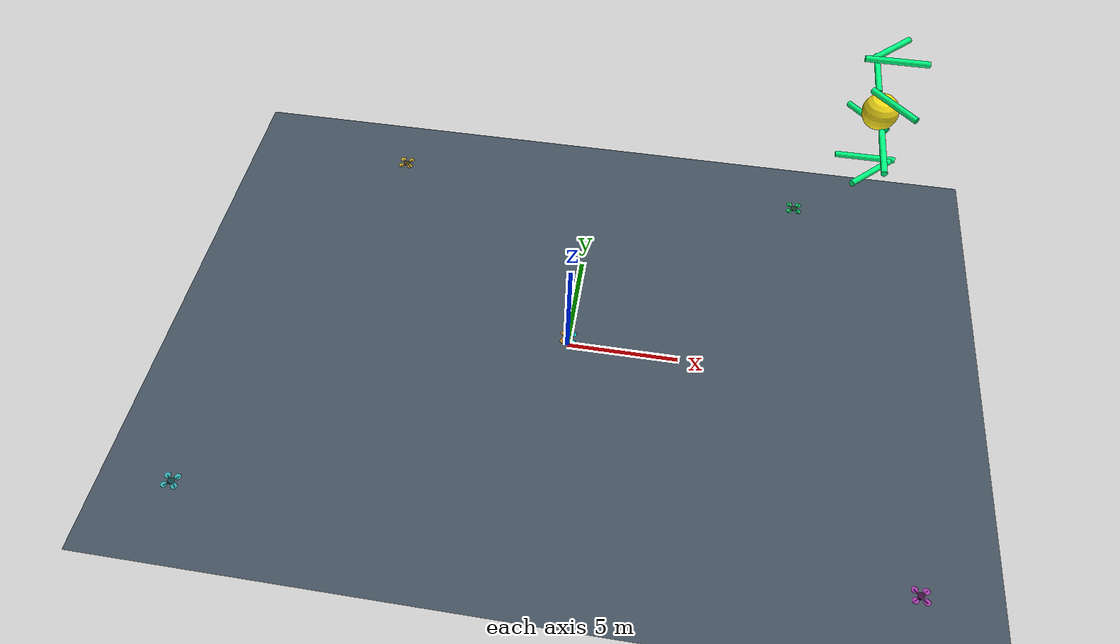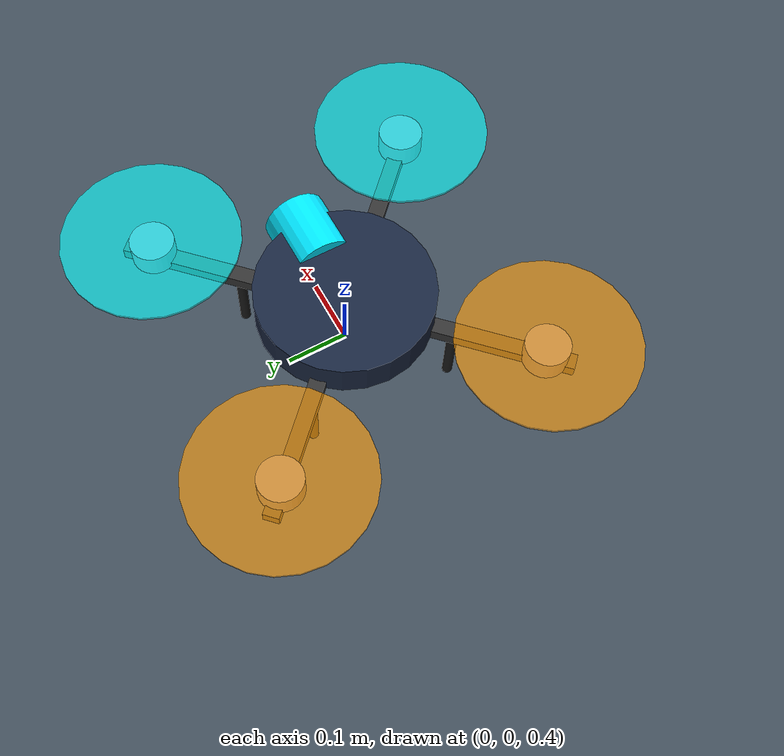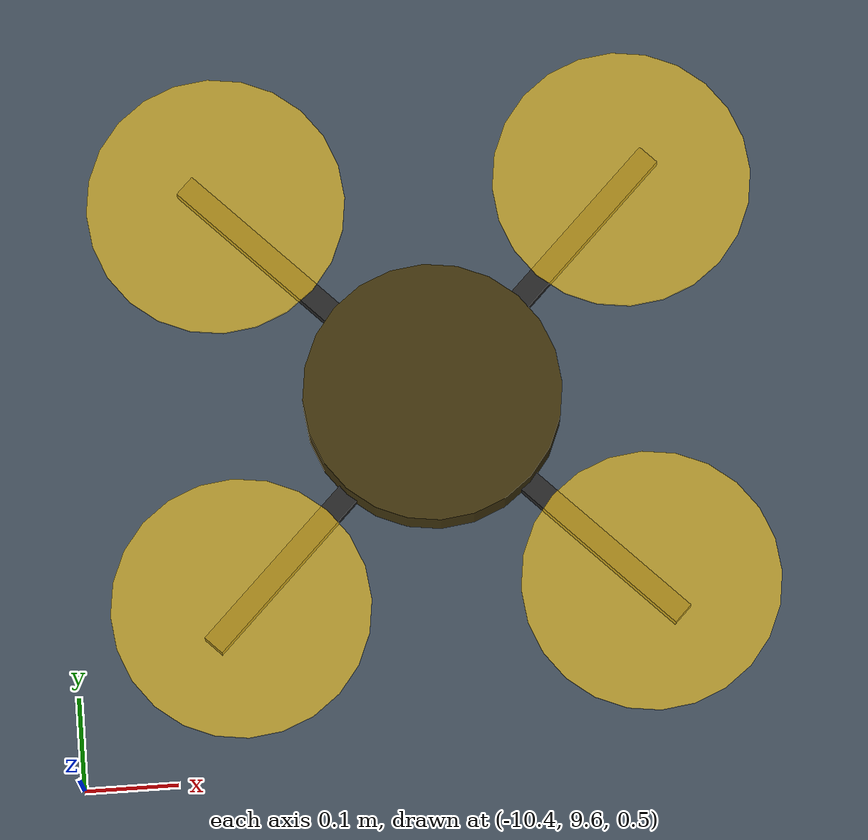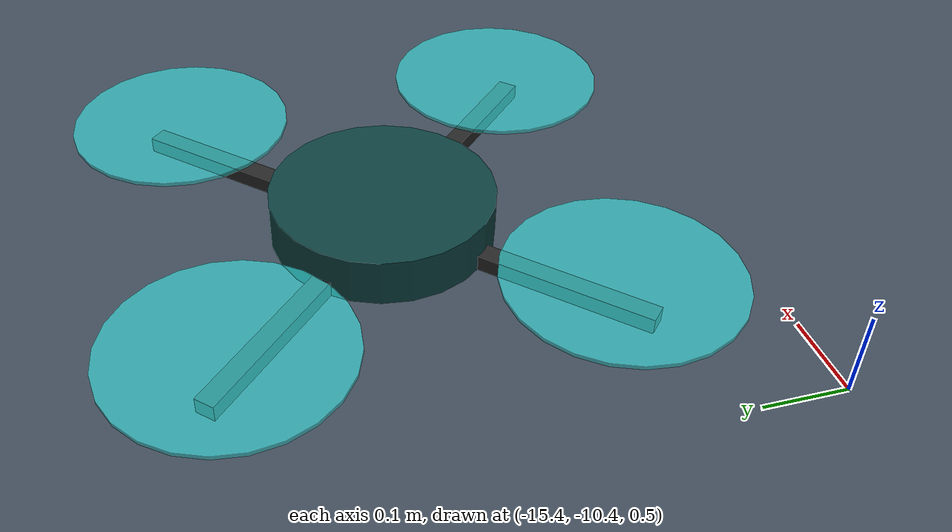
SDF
<?xml version="1.0" ?>
<sdf version="1.8">
  <world name="empty_flight">

    <!-- 500Hz Physics Solver for PX4 aerodynamics -->
    <physics name="ode_physics" type="ode">
      <max_step_size>0.002</max_step_size>
      <real_time_factor>1.0</real_time_factor>
      <real_time_update_rate>500</real_time_update_rate>
    </physics>

    <!-- Gazebo Sim 8 Core System Plugins -->
    <plugin filename="gz-sim-physics-system"        name="gz::sim::systems::Physics"/>
    <plugin filename="gz-sim-user-commands-system"  name="gz::sim::systems::UserCommands"/>
    <plugin filename="gz-sim-scene-broadcaster-system" name="gz::sim::systems::SceneBroadcaster"/>
    <plugin filename="gz-sim-sensors-system"        name="gz::sim::systems::Sensors"/>

    <!-- WGS84 Reference Coordinates -->
    <spherical_coordinates>
      <surface_model>EARTH_WGS84</surface_model>
      <latitude_deg>37.774929</latitude_deg>
      <longitude_deg>-122.419416</longitude_deg>
      <elevation>0.0</elevation>
    </spherical_coordinates>

    <!-- Directional Sun Lighting -->
    <light type="directional" name="sun">
      <cast_shadows>true</cast_shadows>
      <pose>100 100 150 0 0 0</pose>
      <diffuse>1.0 1.0 0.95 1</diffuse>
      <specular>0.3 0.3 0.3 1</specular>
    </light>

    <!-- Ground Plane -->
    <model name="ground_plane">
      <static>true</static>
      <link name="link">
        <collision name="collision">
          <geometry>
            <plane>
              <normal>0 0 1</normal>
              <size>500 500</size>
            </plane>
          </geometry>
        </collision>
        <visual name="visual">
          <geometry>
            <plane>
              <normal>0 0 1</normal>
              <size>500 500</size>
            </plane>
          </geometry>
          <material>
            <ambient>0.15 0.2 0.25 1</ambient>
            <diffuse>0.25 0.3 0.35 1</diffuse>
          </material>
        </visual>
      </link>
    </model>

    <!--            5 TACTICAL QUADROTOR SWARM DIGITAL TWINS               -->

    <!-- Drone 1: UAV Alpha (Swarm Leader) - Cyan / Gold LED -->
    <model name="uav_alpha">
      <pose>0 0 0.5 0 0 0</pose>
      <static>false</static>
      <link name="base_link">
        <gravity>false</gravity>
        <kinematic>true</kinematic>
        <inertial><mass>1.5</mass><inertia><ixx>0.025</ixx><ixy>0</ixy><ixz>0</ixz><iyy>0.025</iyy><iyz>0</iyz><izz>0.045</izz></inertia></inertial>
        <collision name="chassis_collision"><geometry><cylinder><radius>0.22</radius><length>0.10</length></cylinder></geometry></collision>

        <!-- Streamlined Fuselage Canopy -->
        <visual name="canopy_body">
          <pose>0 0 0.02 0 0 0</pose>
          <geometry><cylinder><radius>0.14</radius><length>0.06</length></cylinder></geometry>
          <material><ambient>0.05 0.05 0.08 1</ambient><diffuse>0.1 0.15 0.25 1</diffuse></material>
        </visual>
        <visual name="nose_cone">
          <pose>0.12 0 0.02 0 1.5708 0</pose>
          <geometry><cylinder><radius>0.05</radius><length>0.10</length></cylinder></geometry>
          <material><ambient>0.0 0.8 1.0 1</ambient><diffuse>0.0 0.9 1.0 1</diffuse></material>
        </visual>

        <!-- 4 Diagonal Carbon Fiber Quad Arms -->
        <visual name="arm_fl"><pose>0.14 0.14 0 0 0 0.785</pose><geometry><box><size>0.32 0.025 0.02</size></box></geometry><material><ambient>0.15 0.15 0.15 1</ambient><diffuse>0.2 0.2 0.2 1</diffuse></material></visual>
        <visual name="arm_fr"><pose>0.14 -0.14 0 0 0 -0.785</pose><geometry><box><size>0.32 0.025 0.02</size></box></geometry><material><ambient>0.15 0.15 0.15 1</ambient><diffuse>0.2 0.2 0.2 1</diffuse></material></visual>
        <visual name="arm_rl"><pose>-0.14 0.14 0 0 0 -0.785</pose><geometry><box><size>0.32 0.025 0.02</size></box></geometry><material><ambient>0.15 0.15 0.15 1</ambient><diffuse>0.2 0.2 0.2 1</diffuse></material></visual>
        <visual name="arm_rr"><pose>-0.14 -0.14 0 0 0 0.785</pose><geometry><box><size>0.32 0.025 0.02</size></box></geometry><material><ambient>0.15 0.15 0.15 1</ambient><diffuse>0.2 0.2 0.2 1</diffuse></material></visual>

        <!-- 4 Brushless Motor Pods -->
        <visual name="motor_fl"><pose>0.22 0.22 0.02 0 0 0</pose><geometry><cylinder><radius>0.035</radius><length>0.04</length></cylinder></geometry><material><ambient>0.3 0.3 0.35 1</ambient><diffuse>0.5 0.5 0.6 1</diffuse></material></visual>
        <visual name="motor_fr"><pose>0.22 -0.22 0.02 0 0 0</pose><geometry><cylinder><radius>0.035</radius><length>0.04</length></cylinder></geometry><material><ambient>0.3 0.3 0.35 1</ambient><diffuse>0.5 0.5 0.6 1</diffuse></material></visual>
        <visual name="motor_rl"><pose>-0.22 0.22 0.02 0 0 0</pose><geometry><cylinder><radius>0.035</radius><length>0.04</length></cylinder></geometry><material><ambient>0.3 0.3 0.35 1</ambient><diffuse>0.5 0.5 0.6 1</diffuse></material></visual>
        <visual name="motor_rr"><pose>-0.22 -0.22 0.02 0 0 0</pose><geometry><cylinder><radius>0.035</radius><length>0.04</length></cylinder></geometry><material><ambient>0.3 0.3 0.35 1</ambient><diffuse>0.5 0.5 0.6 1</diffuse></material></visual>

        <!-- 4 Spinning Rotor Discs -->
        <visual name="rotor_fl"><pose>0.22 0.22 0.045 0 0 0</pose><geometry><cylinder><radius>0.14</radius><length>0.005</length></cylinder></geometry><material><ambient>0.0 0.9 1.0 0.6</ambient><diffuse>0.0 1.0 1.0 0.6</diffuse></material></visual>
        <visual name="rotor_fr"><pose>0.22 -0.22 0.045 0 0 0</pose><geometry><cylinder><radius>0.14</radius><length>0.005</length></cylinder></geometry><material><ambient>0.0 0.9 1.0 0.6</ambient><diffuse>0.0 1.0 1.0 0.6</diffuse></material></visual>
        <visual name="rotor_rl"><pose>-0.22 0.22 0.045 0 0 0</pose><geometry><cylinder><radius>0.14</radius><length>0.005</length></cylinder></geometry><material><ambient>1.0 0.6 0.0 0.6</ambient><diffuse>1.0 0.6 0.0 0.6</diffuse></material></visual>
        <visual name="rotor_rr"><pose>-0.22 -0.22 0.045 0 0 0</pose><geometry><cylinder><radius>0.14</radius><length>0.005</length></cylinder></geometry><material><ambient>1.0 0.6 0.0 0.6</ambient><diffuse>1.0 0.6 0.0 0.6</diffuse></material></visual>

        <!-- Landing Legs -->
        <visual name="leg_fl"><pose>0.12 0.12 -0.06 0 0 0</pose><geometry><cylinder><radius>0.008</radius><length>0.12</length></cylinder></geometry><material><ambient>0.1 0.1 0.1 1</ambient></material></visual>
        <visual name="leg_fr"><pose>0.12 -0.12 -0.06 0 0 0</pose><geometry><cylinder><radius>0.008</radius><length>0.12</length></cylinder></geometry><material><ambient>0.1 0.1 0.1 1</ambient></material></visual>
        <visual name="leg_rl"><pose>-0.12 0.12 -0.06 0 0 0</pose><geometry><cylinder><radius>0.008</radius><length>0.12</length></cylinder></geometry><material><ambient>0.1 0.1 0.1 1</ambient></material></visual>
        <visual name="leg_rr"><pose>-0.12 -0.12 -0.06 0 0 0</pose><geometry><cylinder><radius>0.008</radius><length>0.12</length></cylinder></geometry><material><ambient>0.1 0.1 0.1 1</ambient></material></visual>

        <sensor name="imu_sensor" type="imu"><always_on>true</always_on><update_rate>200.0</update_rate><topic>/uav_alpha/imu</topic></sensor>
      </link>
      <plugin filename="gz-sim-velocity-control-system" name="gz::sim::systems::VelocityControl">
        <topic>/uav_alpha/gazebo/command/twist</topic>
        <initial_linear>0 0 0</initial_linear><initial_angular>0 0 0</initial_angular>
      </plugin>
      <plugin filename="gz-sim-pose-publisher-system" name="gz::sim::systems::PosePublisher">
        <publish_link_pose>true</publish_link_pose><update_frequency>50</update_frequency>
      </plugin>
    </model>

    <!-- Drone 2: UAV Beta - Neon Green -->
    <model name="uav_beta">
      <pose>10 10 0.5 0 0 0</pose>
      <static>false</static>
      <link name="base_link">
        <gravity>false</gravity>
        <kinematic>true</kinematic>
        <inertial><mass>1.5</mass><inertia><ixx>0.025</ixx><ixy>0</ixy><ixz>0</ixz><iyy>0.025</iyy><iyz>0</iyz><izz>0.045</izz></inertia></inertial>
        <collision name="chassis_collision"><geometry><cylinder><radius>0.22</radius><length>0.10</length></cylinder></geometry></collision>
        <visual name="canopy_body"><pose>0 0 0.02 0 0 0</pose><geometry><cylinder><radius>0.14</radius><length>0.06</length></cylinder></geometry><material><ambient>0.05 0.08 0.05 1</ambient><diffuse>0.1 0.25 0.15 1</diffuse></material></visual>
        <visual name="arm_fl"><pose>0.14 0.14 0 0 0 0.785</pose><geometry><box><size>0.32 0.025 0.02</size></box></geometry><material><ambient>0.15 0.15 0.15 1</ambient></material></visual>
        <visual name="arm_fr"><pose>0.14 -0.14 0 0 0 -0.785</pose><geometry><box><size>0.32 0.025 0.02</size></box></geometry><material><ambient>0.15 0.15 0.15 1</ambient></material></visual>
        <visual name="arm_rl"><pose>-0.14 0.14 0 0 0 -0.785</pose><geometry><box><size>0.32 0.025 0.02</size></box></geometry><material><ambient>0.15 0.15 0.15 1</ambient></material></visual>
        <visual name="arm_rr"><pose>-0.14 -0.14 0 0 0 0.785</pose><geometry><box><size>0.32 0.025 0.02</size></box></geometry><material><ambient>0.15 0.15 0.15 1</ambient></material></visual>
        <visual name="rotor_fl"><pose>0.22 0.22 0.045 0 0 0</pose><geometry><cylinder><radius>0.14</radius><length>0.005</length></cylinder></geometry><material><ambient>0.0 1.0 0.4 0.6</ambient></material></visual>
        <visual name="rotor_fr"><pose>0.22 -0.22 0.045 0 0 0</pose><geometry><cylinder><radius>0.14</radius><length>0.005</length></cylinder></geometry><material><ambient>0.0 1.0 0.4 0.6</ambient></material></visual>
        <visual name="rotor_rl"><pose>-0.22 0.22 0.045 0 0 0</pose><geometry><cylinder><radius>0.14</radius><length>0.005</length></cylinder></geometry><material><ambient>0.0 1.0 0.4 0.6</ambient></material></visual>
        <visual name="rotor_rr"><pose>-0.22 -0.22 0.045 0 0 0</pose><geometry><cylinder><radius>0.14</radius><length>0.005</length></cylinder></geometry><material><ambient>0.0 1.0 0.4 0.6</ambient></material></visual>
        <sensor name="imu_sensor" type="imu"><always_on>true</always_on><update_rate>200.0</update_rate><topic>/uav_beta/imu</topic></sensor>
      </link>
      <plugin filename="gz-sim-velocity-control-system" name="gz::sim::systems::VelocityControl">
        <topic>/uav_beta/gazebo/command/twist</topic>
        <initial_linear>0 0 0</initial_linear><initial_angular>0 0 0</initial_angular>
      </plugin>
      <plugin filename="gz-sim-pose-publisher-system" name="gz::sim::systems::PosePublisher">
        <publish_link_pose>true</publish_link_pose><update_frequency>50</update_frequency>
      </plugin>
    </model>

    <!-- Drone 3: UAV Gamma - Amber Gold -->
    <model name="uav_gamma">
      <pose>-10 10 0.5 0 0 0</pose>
      <static>false</static>
      <link name="base_link">
        <gravity>false</gravity>
        <kinematic>true</kinematic>
        <inertial><mass>1.5</mass><inertia><ixx>0.025</ixx><ixy>0</ixy><ixz>0</ixz><iyy>0.025</iyy><iyz>0</iyz><izz>0.045</izz></inertia></inertial>
        <collision name="chassis_collision"><geometry><cylinder><radius>0.22</radius><length>0.10</length></cylinder></geometry></collision>
        <visual name="canopy_body"><pose>0 0 0.02 0 0 0</pose><geometry><cylinder><radius>0.14</radius><length>0.06</length></cylinder></geometry><material><ambient>0.08 0.06 0.02 1</ambient><diffuse>0.25 0.20 0.05 1</diffuse></material></visual>
        <visual name="arm_fl"><pose>0.14 0.14 0 0 0 0.785</pose><geometry><box><size>0.32 0.025 0.02</size></box></geometry><material><ambient>0.15 0.15 0.15 1</ambient></material></visual>
        <visual name="arm_fr"><pose>0.14 -0.14 0 0 0 -0.785</pose><geometry><box><size>0.32 0.025 0.02</size></box></geometry><material><ambient>0.15 0.15 0.15 1</ambient></material></visual>
        <visual name="arm_rl"><pose>-0.14 0.14 0 0 0 -0.785</pose><geometry><box><size>0.32 0.025 0.02</size></box></geometry><material><ambient>0.15 0.15 0.15 1</ambient></material></visual>
        <visual name="arm_rr"><pose>-0.14 -0.14 0 0 0 0.785</pose><geometry><box><size>0.32 0.025 0.02</size></box></geometry><material><ambient>0.15 0.15 0.15 1</ambient></material></visual>
        <visual name="rotor_fl"><pose>0.22 0.22 0.045 0 0 0</pose><geometry><cylinder><radius>0.14</radius><length>0.005</length></cylinder></geometry><material><ambient>1.0 0.8 0.1 0.6</ambient></material></visual>
        <visual name="rotor_fr"><pose>0.22 -0.22 0.045 0 0 0</pose><geometry><cylinder><radius>0.14</radius><length>0.005</length></cylinder></geometry><material><ambient>1.0 0.8 0.1 0.6</ambient></material></visual>
        <visual name="rotor_rl"><pose>-0.22 0.22 0.045 0 0 0</pose><geometry><cylinder><radius>0.14</radius><length>0.005</length></cylinder></geometry><material><ambient>1.0 0.8 0.1 0.6</ambient></material></visual>
        <visual name="rotor_rr"><pose>-0.22 -0.22 0.045 0 0 0</pose><geometry><cylinder><radius>0.14</radius><length>0.005</length></cylinder></geometry><material><ambient>1.0 0.8 0.1 0.6</ambient></material></visual>
        <sensor name="imu_sensor" type="imu"><always_on>true</always_on><update_rate>200.0</update_rate><topic>/uav_gamma/imu</topic></sensor>
      </link>
      <plugin filename="gz-sim-velocity-control-system" name="gz::sim::systems::VelocityControl">
        <topic>/uav_gamma/gazebo/command/twist</topic>
        <initial_linear>0 0 0</initial_linear><initial_angular>0 0 0</initial_angular>
      </plugin>
      <plugin filename="gz-sim-pose-publisher-system" name="gz::sim::systems::PosePublisher">
        <publish_link_pose>true</publish_link_pose><update_frequency>50</update_frequency>
      </plugin>
    </model>

    <!-- Drone 4: UAV Delta - Magenta -->
    <model name="uav_delta">
      <pose>15 -10 0.5 0 0 0</pose>
      <static>false</static>
      <link name="base_link">
        <gravity>false</gravity>
        <kinematic>true</kinematic>
        <inertial><mass>1.5</mass><inertia><ixx>0.025</ixx><ixy>0</ixy><ixz>0</ixz><iyy>0.025</iyy><iyz>0</iyz><izz>0.045</izz></inertia></inertial>
        <collision name="chassis_collision"><geometry><cylinder><radius>0.22</radius><length>0.10</length></cylinder></geometry></collision>
        <visual name="canopy_body"><pose>0 0 0.02 0 0 0</pose><geometry><cylinder><radius>0.14</radius><length>0.06</length></cylinder></geometry><material><ambient>0.08 0.02 0.08 1</ambient><diffuse>0.25 0.05 0.25 1</diffuse></material></visual>
        <visual name="arm_fl"><pose>0.14 0.14 0 0 0 0.785</pose><geometry><box><size>0.32 0.025 0.02</size></box></geometry><material><ambient>0.15 0.15 0.15 1</ambient></material></visual>
        <visual name="arm_fr"><pose>0.14 -0.14 0 0 0 -0.785</pose><geometry><box><size>0.32 0.025 0.02</size></box></geometry><material><ambient>0.15 0.15 0.15 1</ambient></material></visual>
        <visual name="arm_rl"><pose>-0.14 0.14 0 0 0 -0.785</pose><geometry><box><size>0.32 0.025 0.02</size></box></geometry><material><ambient>0.15 0.15 0.15 1</ambient></material></visual>
        <visual name="arm_rr"><pose>-0.14 -0.14 0 0 0 0.785</pose><geometry><box><size>0.32 0.025 0.02</size></box></geometry><material><ambient>0.15 0.15 0.15 1</ambient></material></visual>
        <visual name="rotor_fl"><pose>0.22 0.22 0.045 0 0 0</pose><geometry><cylinder><radius>0.14</radius><length>0.005</length></cylinder></geometry><material><ambient>0.9 0.2 0.9 0.6</ambient></material></visual>
        <visual name="rotor_fr"><pose>0.22 -0.22 0.045 0 0 0</pose><geometry><cylinder><radius>0.14</radius><length>0.005</length></cylinder></geometry><material><ambient>0.9 0.2 0.9 0.6</ambient></material></visual>
        <visual name="rotor_rl"><pose>-0.22 0.22 0.045 0 0 0</pose><geometry><cylinder><radius>0.14</radius><length>0.005</length></cylinder></geometry><material><ambient>0.9 0.2 0.9 0.6</ambient></material></visual>
        <visual name="rotor_rr"><pose>-0.22 -0.22 0.045 0 0 0</pose><geometry><cylinder><radius>0.14</radius><length>0.005</length></cylinder></geometry><material><ambient>0.9 0.2 0.9 0.6</ambient></material></visual>
        <sensor name="imu_sensor" type="imu"><always_on>true</always_on><update_rate>200.0</update_rate><topic>/uav_delta/imu</topic></sensor>
      </link>
      <plugin filename="gz-sim-velocity-control-system" name="gz::sim::systems::VelocityControl">
        <topic>/uav_delta/gazebo/command/twist</topic>
        <initial_linear>0 0 0</initial_linear><initial_angular>0 0 0</initial_angular>
      </plugin>
      <plugin filename="gz-sim-pose-publisher-system" name="gz::sim::systems::PosePublisher">
        <publish_link_pose>true</publish_link_pose><update_frequency>50</update_frequency>
      </plugin>
    </model>

    <!-- Drone 5: UAV Epsilon - Deep Cyan -->
    <model name="uav_epsilon">
      <pose>-15 -10 0.5 0 0 0</pose>
      <static>false</static>
      <link name="base_link">
        <gravity>false</gravity>
        <kinematic>true</kinematic>
        <inertial><mass>1.5</mass><inertia><ixx>0.025</ixx><ixy>0</ixy><ixz>0</ixz><iyy>0.025</iyy><iyz>0</iyz><izz>0.045</izz></inertia></inertial>
        <collision name="chassis_collision"><geometry><cylinder><radius>0.22</radius><length>0.10</length></cylinder></geometry></collision>
        <visual name="canopy_body"><pose>0 0 0.02 0 0 0</pose><geometry><cylinder><radius>0.14</radius><length>0.06</length></cylinder></geometry><material><ambient>0.02 0.08 0.08 1</ambient><diffuse>0.05 0.25 0.25 1</diffuse></material></visual>
        <visual name="arm_fl"><pose>0.14 0.14 0 0 0 0.785</pose><geometry><box><size>0.32 0.025 0.02</size></box></geometry><material><ambient>0.15 0.15 0.15 1</ambient></material></visual>
        <visual name="arm_fr"><pose>0.14 -0.14 0 0 0 -0.785</pose><geometry><box><size>0.32 0.025 0.02</size></box></geometry><material><ambient>0.15 0.15 0.15 1</ambient></material></visual>
        <visual name="arm_rl"><pose>-0.14 0.14 0 0 0 -0.785</pose><geometry><box><size>0.32 0.025 0.02</size></box></geometry><material><ambient>0.15 0.15 0.15 1</ambient></material></visual>
        <visual name="arm_rr"><pose>-0.14 -0.14 0 0 0 0.785</pose><geometry><box><size>0.32 0.025 0.02</size></box></geometry><material><ambient>0.15 0.15 0.15 1</ambient></material></visual>
        <visual name="rotor_fl"><pose>0.22 0.22 0.045 0 0 0</pose><geometry><cylinder><radius>0.14</radius><length>0.005</length></cylinder></geometry><material><ambient>0.2 0.9 0.9 0.6</ambient></material></visual>
        <visual name="rotor_fr"><pose>0.22 -0.22 0.045 0 0 0</pose><geometry><cylinder><radius>0.14</radius><length>0.005</length></cylinder></geometry><material><ambient>0.2 0.9 0.9 0.6</ambient></material></visual>
        <visual name="rotor_rl"><pose>-0.22 0.22 0.045 0 0 0</pose><geometry><cylinder><radius>0.14</radius><length>0.005</length></cylinder></geometry><material><ambient>0.2 0.9 0.9 0.6</ambient></material></visual>
        <visual name="rotor_rr"><pose>-0.22 -0.22 0.045 0 0 0</pose><geometry><cylinder><radius>0.14</radius><length>0.005</length></cylinder></geometry><material><ambient>0.2 0.9 0.9 0.6</ambient></material></visual>
        <sensor name="imu_sensor" type="imu"><always_on>true</always_on><update_rate>200.0</update_rate><topic>/uav_epsilon/imu</topic></sensor>
      </link>
      <plugin filename="gz-sim-velocity-control-system" name="gz::sim::systems::VelocityControl">
        <topic>/uav_epsilon/gazebo/command/twist</topic>
        <initial_linear>0 0 0</initial_linear><initial_angular>0 0 0</initial_angular>
      </plugin>
      <plugin filename="gz-sim-pose-publisher-system" name="gz::sim::systems::PosePublisher">
        <publish_link_pose>true</publish_link_pose><update_frequency>50</update_frequency>
      </plugin>
    </model>

    <!--     HIGH-VISIBILITY 3D GLOWING AERIAL RING TARGET GATE (4.0m)     -->

    <model name="ring_target">
      <static>true</static>
      <pose>10.0 0.0 15.0 0 0 0</pose>
      <link name="link">

        <!-- Center Target Beacon Sphere -->
        <visual name="center_beacon">
          <pose>0 0 0 0 0 0</pose>
          <geometry><sphere><radius>0.6</radius></sphere></geometry>
          <material>
            <ambient>1.0 0.8 0.0 1</ambient>
            <diffuse>1.0 0.9 0.1 1</diffuse>
            <emissive>1.0 0.8 0.0 1</emissive>
          </material>
        </visual>

        <!-- 3.0m Diameter Octagonal Ring Frame in Y-Z Plane -->
        <visual name="ring_top"><pose>0 0 2.0 0 1.5708 0</pose><geometry><cylinder><radius>0.10</radius><length>2.0</length></cylinder></geometry><material><ambient>0.0 1.0 0.5 1</ambient><emissive>0.0 1.0 0.5 1</emissive></material></visual>
        <visual name="ring_bottom"><pose>0 0 -2.0 0 1.5708 0</pose><geometry><cylinder><radius>0.10</radius><length>2.0</length></cylinder></geometry><material><ambient>0.0 1.0 0.5 1</ambient><emissive>0.0 1.0 0.5 1</emissive></material></visual>
        <visual name="ring_left"><pose>0 2.0 0 1.5708 1.5708 0</pose><geometry><cylinder><radius>0.10</radius><length>2.0</length></cylinder></geometry><material><ambient>0.0 1.0 0.5 1</ambient><emissive>0.0 1.0 0.5 1</emissive></material></visual>
        <visual name="ring_right"><pose>0 -2.0 0 1.5708 1.5708 0</pose><geometry><cylinder><radius>0.10</radius><length>2.0</length></cylinder></geometry><material><ambient>0.0 1.0 0.5 1</ambient><emissive>0.0 1.0 0.5 1</emissive></material></visual>

        <visual name="ring_tr"><pose>0 1.41 1.41 0 1.5708 0.785</pose><geometry><cylinder><radius>0.10</radius><length>1.8</length></cylinder></geometry><material><ambient>0.0 1.0 0.5 1</ambient><emissive>0.0 1.0 0.5 1</emissive></material></visual>
        <visual name="ring_tl"><pose>0 -1.41 1.41 0 1.5708 -0.785</pose><geometry><cylinder><radius>0.10</radius><length>1.8</length></cylinder></geometry><material><ambient>0.0 1.0 0.5 1</ambient><emissive>0.0 1.0 0.5 1</emissive></material></visual>
        <visual name="ring_br"><pose>0 1.41 -1.41 0 1.5708 -0.785</pose><geometry><cylinder><radius>0.10</radius><length>1.8</length></cylinder></geometry><material><ambient>0.0 1.0 0.5 1</ambient><emissive>0.0 1.0 0.5 1</emissive></material></visual>
        <visual name="ring_bl"><pose>0 -1.41 -1.41 0 1.5708 0.785</pose><geometry><cylinder><radius>0.10</radius><length>1.8</length></cylinder></geometry><material><ambient>0.0 1.0 0.5 1</ambient><emissive>0.0 1.0 0.5 1</emissive></material></visual>

      </link>
    </model>

  </world>
</sdf>
